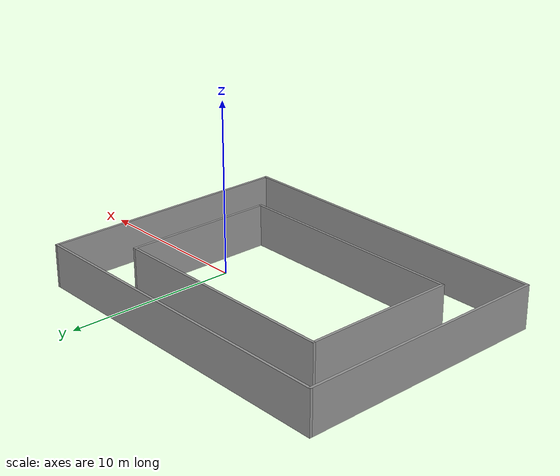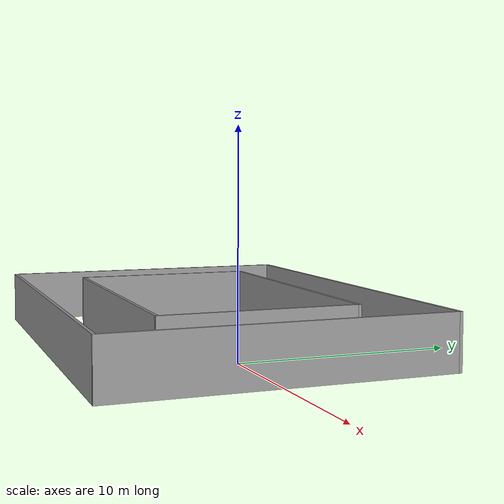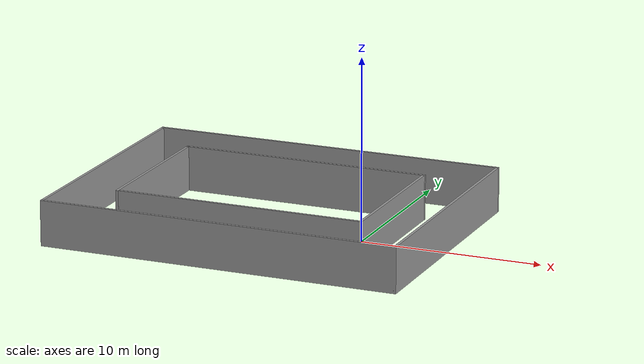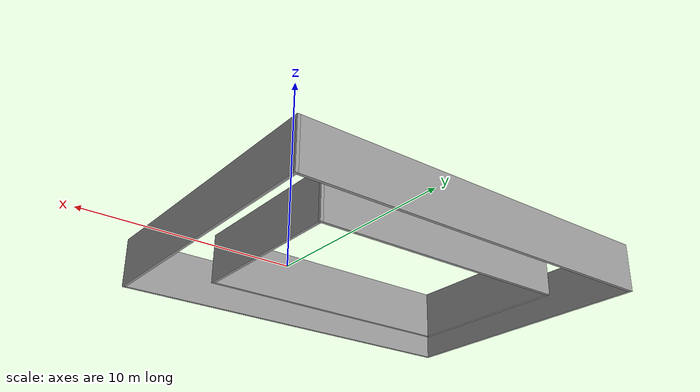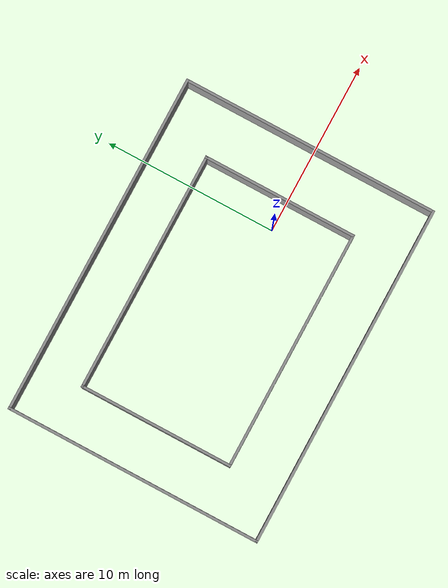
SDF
<?xml version='1.0'?>
<sdf version='1.6'>
  <model name='world4'>
    <pose frame=''>-5.17161 0.281569 0 0 -0 0</pose>
    <link name='Wall_17'>
      <collision name='Wall_17_Collision'>
        <geometry>
          <box>
            <size>9 0.15 2.5</size>
          </box>
        </geometry>
        <pose frame=''>0 0 1.25 0 -0 0</pose>
      </collision>
      <visual name='Wall_17_Visual'>
        <pose frame=''>0 0 1.25 0 -0 0</pose>
        <geometry>
          <box>
            <size>9 0.15 2.5</size>
          </box>
        </geometry>
        <material>
          <script>
            <uri>file://media/materials/scripts/gazebo.material</uri>
            <name>Gazebo/Grey</name>
          </script>
          <ambient>1 1 1 1</ambient>
        </material>
        <meta>
          <layer>0</layer>
        </meta>
      </visual>
      <pose frame=''>-7.075 0.15 0 0 -0 -1.5708</pose>
    </link>
    <link name='Wall_20'>
      <collision name='Wall_20_Collision'>
        <geometry>
          <box>
            <size>14 0.15 2.5</size>
          </box>
        </geometry>
        <pose frame=''>0 0 1.25 0 -0 0</pose>
      </collision>
      <visual name='Wall_20_Visual'>
        <pose frame=''>0 0 1.25 0 -0 0</pose>
        <geometry>
          <box>
            <size>14 0.15 2.5</size>
          </box>
        </geometry>
        <material>
          <script>
            <uri>file://media/materials/scripts/gazebo.material</uri>
            <name>Gazebo/Grey</name>
          </script>
          <ambient>1 1 1 1</ambient>
        </material>
        <meta>
          <layer>0</layer>
        </meta>
      </visual>
      <pose frame=''>-0.15 -4.275 0 0 -0 0</pose>
    </link>
    <link name='Wall_21'>
      <collision name='Wall_21_Collision'>
        <geometry>
          <box>
            <size>9 0.15 2.5</size>
          </box>
        </geometry>
        <pose frame=''>0 0 1.25 0 -0 0</pose>
      </collision>
      <visual name='Wall_21_Visual'>
        <pose frame=''>0 0 1.25 0 -0 0</pose>
        <geometry>
          <box>
            <size>9 0.15 2.5</size>
          </box>
        </geometry>
        <material>
          <script>
            <uri>file://media/materials/scripts/gazebo.material</uri>
            <name>Gazebo/Grey</name>
          </script>
          <ambient>1 1 1 1</ambient>
        </material>
        <meta>
          <layer>0</layer>
        </meta>
      </visual>
      <pose frame=''>6.775 0.15 0 0 -0 1.5708</pose>
    </link>
    <link name='Wall_22'>
      <collision name='Wall_22_Collision'>
        <geometry>
          <box>
            <size>14 0.15 2.5</size>
          </box>
        </geometry>
        <pose frame=''>0 0 1.25 0 -0 0</pose>
      </collision>
      <visual name='Wall_22_Visual'>
        <pose frame=''>0 0 1.25 0 -0 0</pose>
        <geometry>
          <box>
            <size>14 0.15 2.5</size>
          </box>
        </geometry>
        <material>
          <script>
            <uri>file://media/materials/scripts/gazebo.material</uri>
            <name>Gazebo/Grey</name>
          </script>
          <ambient>1 1 1 1</ambient>
        </material>
        <meta>
          <layer>0</layer>
        </meta>
      </visual>
      <pose frame=''>-0.15 4.575 0 0 -0 3.14159</pose>
    </link>
    <link name='Wall_4'>
      <collision name='Wall_4_Collision'>
        <geometry>
          <box>
            <size>15 0.15 2.5</size>
          </box>
        </geometry>
        <pose frame=''>0 0 1.25 0 -0 0</pose>
      </collision>
      <visual name='Wall_4_Visual'>
        <pose frame=''>0 0 1.25 0 -0 0</pose>
        <geometry>
          <box>
            <size>15 0.15 2.5</size>
          </box>
        </geometry>
        <material>
          <script>
            <uri>file://media/materials/scripts/gazebo.material</uri>
            <name>Gazebo/Grey</name>
          </script>
          <ambient>1 1 1 1</ambient>
        </material>
        <meta>
          <layer>0</layer>
        </meta>
      </visual>
      <pose frame=''>-9.925 0 0 0 -0 -1.5708</pose>
    </link>
    <link name='Wall_5'>
      <collision name='Wall_5_Collision'>
        <geometry>
          <box>
            <size>20 0.15 2.5</size>
          </box>
        </geometry>
        <pose frame=''>0 0 1.25 0 -0 0</pose>
      </collision>
      <visual name='Wall_5_Visual'>
        <pose frame=''>0 0 1.25 0 -0 0</pose>
        <geometry>
          <box>
            <size>20 0.15 2.5</size>
          </box>
        </geometry>
        <material>
          <script>
            <uri>file://media/materials/scripts/gazebo.material</uri>
            <name>Gazebo/Grey</name>
          </script>
          <ambient>1 1 1 1</ambient>
        </material>
        <meta>
          <layer>0</layer>
        </meta>
      </visual>
      <pose frame=''>-0 -7.425 0 0 -0 0</pose>
    </link>
    <link name='Wall_6'>
      <collision name='Wall_6_Collision'>
        <geometry>
          <box>
            <size>15 0.15 2.5</size>
          </box>
        </geometry>
        <pose frame=''>0 0 1.25 0 -0 0</pose>
      </collision>
      <visual name='Wall_6_Visual'>
        <pose frame=''>0 0 1.25 0 -0 0</pose>
        <geometry>
          <box>
            <size>15 0.15 2.5</size>
          </box>
        </geometry>
        <material>
          <script>
            <uri>file://media/materials/scripts/gazebo.material</uri>
            <name>Gazebo/Grey</name>
          </script>
          <ambient>1 1 1 1</ambient>
        </material>
        <meta>
          <layer>0</layer>
        </meta>
      </visual>
      <pose frame=''>9.925 0 0 0 -0 1.5708</pose>
    </link>
    <link name='Wall_7'>
      <collision name='Wall_7_Collision'>
        <geometry>
          <box>
            <size>20 0.15 2.5</size>
          </box>
        </geometry>
        <pose frame=''>0 0 1.25 0 -0 0</pose>
      </collision>
      <visual name='Wall_7_Visual'>
        <pose frame=''>0 0 1.25 0 -0 0</pose>
        <geometry>
          <box>
            <size>20 0.15 2.5</size>
          </box>
        </geometry>
        <material>
          <script>
            <uri>file://media/materials/scripts/gazebo.material</uri>
            <name>Gazebo/Grey</name>
          </script>
          <ambient>1 1 1 1</ambient>
        </material>
        <meta>
          <layer>0</layer>
        </meta>
      </visual>
      <pose frame=''>-0 7.425 0 0 -0 3.14159</pose>
    </link>
    <static>1</static>
  </model>
</sdf>
